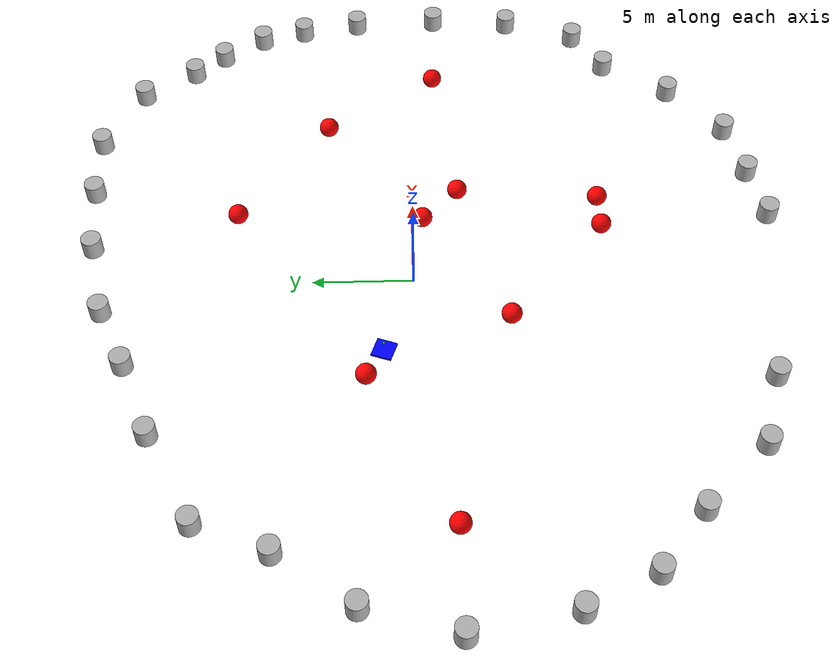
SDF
<sdf version='1.10'>
  <world name='3d_world'>
    <physics name='1ms' type='ode'>
      <max_step_size>0.001</max_step_size>
      <real_time_factor>1</real_time_factor>
      <real_time_update_rate>1000</real_time_update_rate>
    </physics>
    <gravity>0 0 0</gravity>
    <plugin name='gz::sim::v8::systems::Physics' filename='gz-sim-physics-system'/>
    <plugin name='ignition::gazebo::systems::UserCommands' filename='libignition-gazebo-user-commands-system.so'/>
    <plugin name='gz::sim::systems::SceneBroadcaster' filename='gz-sim-scene-broadcaster-system'/>
    <plugin name='gz::sim::systems::Sensors' filename='gz-sim-sensors-system'>
      <render_engine>ogre2</render_engine>
    </plugin>
    <magnetic_field>5.5644999999999998e-06 2.2875799999999999e-05 -4.2388400000000002e-05</magnetic_field>
    <atmosphere type='adiabatic'/>
    <scene>
      <ambient>0.400000006 0.400000006 0.400000006 1</ambient>
      <background>0.699999988 0.699999988 0.699999988 1</background>
      <shadows>true</shadows>
    </scene>
    <model name='agente' canonical_link='chassis'>
      <pose>-4.1412244840083385 1.4699329197364004 1.1905768561219049e-17 -8.9568819849753768e-19 -1.9798048087460244e-19 -1.9063171572255722</pose>
      <link name='chassis'>
        <pose>0 0 0 0 0 0</pose>
        <inertial>
          <mass>1.14395</mass>
          <inertia>
            <ixx>0.095328999999999997</ixx>
            <ixy>0</ixy>
            <ixz>0</ixz>
            <iyy>0.38131700000000002</iyy>
            <iyz>0</iyz>
            <izz>0.47664600000000001</izz>
          </inertia>
          <pose>0 0 0 0 0 0</pose>
        </inertial>
        <visual name='visual'>
          <geometry>
            <box>
              <size>1 1 0.10000000000000001</size>
            </box>
          </geometry>
          <material>
            <ambient>0 0 1 1</ambient>
            <diffuse>0 0 1 1</diffuse>
            <specular>0 0 1 1</specular>
          </material>
        </visual>
        <collision name='collision'>
          <geometry>
            <box>
              <size>1 1 1</size>
            </box>
          </geometry>
          <surface>
            <friction>
              <ode/>
            </friction>
            <bounce/>
            <contact/>
          </surface>
        </collision>
        <enable_wind>false</enable_wind>
        <enable_gravity>false</enable_gravity>
      </link>
      <link name='lidar_link'>
        <pose>0 -3.5527136788005009e-15 0.5 0 0 -3.3306690738754691e-16</pose>
        <inertial>
          <mass>0.10000000000000001</mass>
          <inertia>
            <ixx>0.00016666700000000001</ixx>
            <iyy>0.00016666700000000001</iyy>
            <izz>0.00016666700000000001</izz>
            <ixy>0</ixy>
            <ixz>0</ixz>
            <iyz>0</iyz>
          </inertia>
          <pose>0 0 0 0 0 0</pose>
        </inertial>
        <collision name='collision'>
          <geometry>
            <cylinder>
              <radius>0.050000000000000003</radius>
              <length>0.10000000000000001</length>
            </cylinder>
          </geometry>
          <surface>
            <friction>
              <ode/>
            </friction>
            <bounce/>
            <contact/>
          </surface>
        </collision>
        <visual name='visual'>
          <geometry>
            <cylinder>
              <radius>0.050000000000000003</radius>
              <length>0.10000000000000001</length>
            </cylinder>
          </geometry>
          <material>
            <ambient>0 1 0 1</ambient>
            <diffuse>0 1 0 1</diffuse>
            <specular>0 1 0 1</specular>
          </material>
        </visual>
        <sensor name='lidar' type='gpu_lidar'>
          <pose>0 0 0 0 1.670477943807623e-52 0</pose>
          <topic>scan</topic>
          <update_rate>10</update_rate>
          <enable_metrics>false</enable_metrics>
          <lidar>
            <scan>
              <horizontal>
                <samples>5000</samples>
                <resolution>1</resolution>
                <min_angle>-3.1415899999999999</min_angle>
                <max_angle>3.1415899999999999</max_angle>
              </horizontal>
              <vertical>
                <samples>1</samples>
                <min_angle>0</min_angle>
                <max_angle>0</max_angle>
                <resolution>1</resolution>
              </vertical>
            </scan>
            <range>
              <min>0.10000000000000001</min>
              <max>10</max>
              <resolution>0.01</resolution>
            </range>
            <noise>
              <type>none</type>
              <mean>0</mean>
              <stddev>0</stddev>
            </noise>
            <visibility_mask>4294967295</visibility_mask>
          </lidar>
        </sensor>
        <enable_wind>false</enable_wind>
        <enable_gravity>false</enable_gravity>
      </link>
      <joint name='lidar_joint' type='fixed'>
        <parent>chassis</parent>
        <child>lidar_link</child>
        <pose>0 0 0 0 1.670477943807623e-52 0</pose>
      </joint>
      <plugin name='ignition::gazebo::systems::JointStatePublisher' filename='ignition-gazebo-joint-state-publisher-system'/>
      <plugin name='ignition::gazebo::systems::OdometryPublisher' filename='ignition-gazebo-odometry-publisher-system'>
        <dimensions>3</dimensions>
      </plugin>
      <plugin name='ignition::gazebo::systems::VelocityControl' filename='ignition-gazebo-velocity-control-system'>
        <initial_linear>0.0 0 0</initial_linear>
        <initial_angular>0 0 0.0</initial_angular>
      </plugin>
      <plugin name='ignition::gazebo::systems::PosePublisher' filename='libignition-gazebo-pose-publisher-system.so'>
        <topic>/agente/pose</topic>
        <frame_id>agente</frame_id>
        <update_rate>30</update_rate>
      </plugin>
      <static>false</static>
      <self_collide>false</self_collide>
    </model>
    <model name='obstacle_1' canonical_link='obstacle'>
      <static>true</static>
      <pose>3.2000000476837158 -9.5197582244873047 0.5 0 0 0</pose>
      <link name='obstacle'>
        <pose>0 0 0 0 0 0</pose>
        <visual name='visual'>
          <geometry>
            <sphere>
              <radius>0.5</radius>
            </sphere>
          </geometry>
          <material>
            <ambient>1 0 0 1</ambient>
            <diffuse>1 0 0 1</diffuse>
            <specular>1 0 0 1</specular>
          </material>
        </visual>
        <collision name='collision'>
          <geometry>
            <sphere>
              <radius>0.5</radius>
            </sphere>
          </geometry>
          <surface>
            <friction>
              <ode/>
            </friction>
            <bounce/>
            <contact/>
          </surface>
        </collision>
        <inertial>
          <pose>0 0 0 0 0 0</pose>
          <mass>1</mass>
          <inertia>
            <ixx>1</ixx>
            <ixy>0</ixy>
            <ixz>0</ixz>
            <iyy>1</iyy>
            <iyz>0</iyz>
            <izz>1</izz>
          </inertia>
        </inertial>
        <enable_wind>false</enable_wind>
        <enable_gravity>false</enable_gravity>
      </link>
      <plugin name='ignition::gazebo::systems::VelocityControl' filename='ignition-gazebo-velocity-control-system'>
        <initial_linear>0.0 0 0</initial_linear>
        <initial_angular>0 0 0.0</initial_angular>
      </plugin>
      <plugin name='ignition::gazebo::systems::OdometryPublisher' filename='ignition-gazebo-odometry-publisher-system'>
        <dimensions>3</dimensions>
      </plugin>
      <self_collide>false</self_collide>
    </model>
    <model name='obstacle_2' canonical_link='obstacle'>
      <static>true</static>
      <pose>-13.715825080871582 -1.7999999523162842 0.5 0 0 0</pose>
      <link name='obstacle'>
        <pose>0 0 0 0 0 0</pose>
        <visual name='visual'>
          <geometry>
            <sphere>
              <radius>0.5</radius>
            </sphere>
          </geometry>
          <material>
            <ambient>1 0 0 1</ambient>
            <diffuse>1 0 0 1</diffuse>
            <specular>1 0 0 1</specular>
          </material>
        </visual>
        <collision name='collision'>
          <geometry>
            <sphere>
              <radius>0.5</radius>
            </sphere>
          </geometry>
          <surface>
            <friction>
              <ode/>
            </friction>
            <bounce/>
            <contact/>
          </surface>
        </collision>
        <inertial>
          <pose>0 0 0 0 0 0</pose>
          <mass>1</mass>
          <inertia>
            <ixx>1</ixx>
            <ixy>0</ixy>
            <ixz>0</ixz>
            <iyy>1</iyy>
            <iyz>0</iyz>
            <izz>1</izz>
          </inertia>
        </inertial>
        <enable_wind>false</enable_wind>
        <enable_gravity>false</enable_gravity>
      </link>
      <plugin name='ignition::gazebo::systems::VelocityControl' filename='ignition-gazebo-velocity-control-system'>
        <initial_linear>0.0 0 0</initial_linear>
        <initial_angular>0 0 0.0</initial_angular>
      </plugin>
      <plugin name='ignition::gazebo::systems::OdometryPublisher' filename='ignition-gazebo-odometry-publisher-system'>
        <dimensions>3</dimensions>
      </plugin>
      <self_collide>false</self_collide>
    </model>
    <model name='obstacle_3' canonical_link='obstacle'>
      <static>true</static>
      <pose>5.7000000000000002 -2.2999999999999998 0.5 0 0 0</pose>
      <link name='obstacle'>
        <pose>0 0 0 0 0 0</pose>
        <visual name='visual'>
          <geometry>
            <sphere>
              <radius>0.5</radius>
            </sphere>
          </geometry>
          <material>
            <ambient>1 0 0 1</ambient>
            <diffuse>1 0 0 1</diffuse>
            <specular>1 0 0 1</specular>
          </material>
        </visual>
        <collision name='collision'>
          <geometry>
            <sphere>
              <radius>0.5</radius>
            </sphere>
          </geometry>
          <surface>
            <friction>
              <ode/>
            </friction>
            <bounce/>
            <contact/>
          </surface>
        </collision>
        <inertial>
          <pose>0 0 0 0 0 0</pose>
          <mass>1</mass>
          <inertia>
            <ixx>1</ixx>
            <ixy>0</ixy>
            <ixz>0</ixz>
            <iyy>1</iyy>
            <iyz>0</iyz>
            <izz>1</izz>
          </inertia>
        </inertial>
        <enable_wind>false</enable_wind>
        <enable_gravity>false</enable_gravity>
      </link>
      <plugin name='ignition::gazebo::systems::VelocityControl' filename='ignition-gazebo-velocity-control-system'>
        <initial_linear>0.0 0 0</initial_linear>
        <initial_angular>0 0 0.0</initial_angular>
      </plugin>
      <plugin name='ignition::gazebo::systems::OdometryPublisher' filename='ignition-gazebo-odometry-publisher-system'>
        <dimensions>3</dimensions>
      </plugin>
      <self_collide>false</self_collide>
    </model>
    <model name='obstacle_4' canonical_link='obstacle'>
      <static>true</static>
      <pose>14.214949607849121 -1.2000000476837158 0.5 0 0 0</pose>
      <link name='obstacle'>
        <pose>0 0 0 0 0 0</pose>
        <visual name='visual'>
          <geometry>
            <sphere>
              <radius>0.5</radius>
            </sphere>
          </geometry>
          <material>
            <ambient>1 0 0 1</ambient>
            <diffuse>1 0 0 1</diffuse>
            <specular>1 0 0 1</specular>
          </material>
        </visual>
        <collision name='collision'>
          <geometry>
            <sphere>
              <radius>0.5</radius>
            </sphere>
          </geometry>
          <surface>
            <friction>
              <ode/>
            </friction>
            <bounce/>
            <contact/>
          </surface>
        </collision>
        <inertial>
          <pose>0 0 0 0 0 0</pose>
          <mass>1</mass>
          <inertia>
            <ixx>1</ixx>
            <ixy>0</ixy>
            <ixz>0</ixz>
            <iyy>1</iyy>
            <iyz>0</iyz>
            <izz>1</izz>
          </inertia>
        </inertial>
        <enable_wind>false</enable_wind>
        <enable_gravity>false</enable_gravity>
      </link>
      <plugin name='ignition::gazebo::systems::VelocityControl' filename='ignition-gazebo-velocity-control-system'>
        <initial_linear>0.0 0 0</initial_linear>
        <initial_angular>0 0 0.0</initial_angular>
      </plugin>
      <plugin name='ignition::gazebo::systems::OdometryPublisher' filename='ignition-gazebo-odometry-publisher-system'>
        <dimensions>3</dimensions>
      </plugin>
      <self_collide>false</self_collide>
    </model>
    <model name='obstacle_5' canonical_link='obstacle'>
      <static>true</static>
      <pose>3.7999999523162842 -0.48525863885879517 0.5 0 0 0</pose>
      <link name='obstacle'>
        <pose>0 0 0 0 0 0</pose>
        <visual name='visual'>
          <geometry>
            <sphere>
              <radius>0.5</radius>
            </sphere>
          </geometry>
          <material>
            <ambient>1 0 0 1</ambient>
            <diffuse>1 0 0 1</diffuse>
            <specular>1 0 0 1</specular>
          </material>
        </visual>
        <collision name='collision'>
          <geometry>
            <sphere>
              <radius>0.5</radius>
            </sphere>
          </geometry>
          <surface>
            <friction>
              <ode/>
            </friction>
            <bounce/>
            <contact/>
          </surface>
        </collision>
        <inertial>
          <pose>0 0 0 0 0 0</pose>
          <mass>1</mass>
          <inertia>
            <ixx>1</ixx>
            <ixy>0</ixy>
            <ixz>0</ixz>
            <iyy>1</iyy>
            <iyz>0</iyz>
            <izz>1</izz>
          </inertia>
        </inertial>
        <enable_wind>false</enable_wind>
        <enable_gravity>false</enable_gravity>
      </link>
      <plugin name='ignition::gazebo::systems::VelocityControl' filename='ignition-gazebo-velocity-control-system'>
        <initial_linear>0.0 0 0</initial_linear>
        <initial_angular>0 0 0.0</initial_angular>
      </plugin>
      <plugin name='ignition::gazebo::systems::OdometryPublisher' filename='ignition-gazebo-odometry-publisher-system'>
        <dimensions>3</dimensions>
      </plugin>
      <self_collide>false</self_collide>
    </model>
    <model name='obstacle_6' canonical_link='obstacle'>
      <static>true</static>
      <pose>5.0999999046325684 -9.4869499206542969 0.5 0 0 0</pose>
      <link name='obstacle'>
        <pose>0 0 0 0 0 0</pose>
        <visual name='visual'>
          <geometry>
            <sphere>
              <radius>0.5</radius>
            </sphere>
          </geometry>
          <material>
            <ambient>1 0 0 1</ambient>
            <diffuse>1 0 0 1</diffuse>
            <specular>1 0 0 1</specular>
          </material>
        </visual>
        <collision name='collision'>
          <geometry>
            <sphere>
              <radius>0.5</radius>
            </sphere>
          </geometry>
          <surface>
            <friction>
              <ode/>
            </friction>
            <bounce/>
            <contact/>
          </surface>
        </collision>
        <inertial>
          <pose>0 0 0 0 0 0</pose>
          <mass>1</mass>
          <inertia>
            <ixx>1</ixx>
            <ixy>0</ixy>
            <ixz>0</ixz>
            <iyy>1</iyy>
            <iyz>0</iyz>
            <izz>1</izz>
          </inertia>
        </inertial>
        <enable_wind>false</enable_wind>
        <enable_gravity>false</enable_gravity>
      </link>
      <plugin name='ignition::gazebo::systems::VelocityControl' filename='ignition-gazebo-velocity-control-system'>
        <initial_linear>0.0 0 0</initial_linear>
        <initial_angular>0 0 0.0</initial_angular>
      </plugin>
      <plugin name='ignition::gazebo::systems::OdometryPublisher' filename='ignition-gazebo-odometry-publisher-system'>
        <dimensions>3</dimensions>
      </plugin>
      <self_collide>false</self_collide>
    </model>
    <model name='obstacle_7' canonical_link='obstacle'>
      <static>true</static>
      <pose>-2.4704799652099609 -4.6619949340820312 0.5 0 0 0</pose>
      <link name='obstacle'>
        <pose>0 0 0 0 0 0</pose>
        <visual name='visual'>
          <geometry>
            <sphere>
              <radius>0.5</radius>
            </sphere>
          </geometry>
          <material>
            <ambient>1 0 0 1</ambient>
            <diffuse>1 0 0 1</diffuse>
            <specular>1 0 0 1</specular>
          </material>
        </visual>
        <collision name='collision'>
          <geometry>
            <sphere>
              <radius>0.5</radius>
            </sphere>
          </geometry>
          <surface>
            <friction>
              <ode/>
            </friction>
            <bounce/>
            <contact/>
          </surface>
        </collision>
        <inertial>
          <pose>0 0 0 0 0 0</pose>
          <mass>1</mass>
          <inertia>
            <ixx>1</ixx>
            <ixy>0</ixy>
            <ixz>0</ixz>
            <iyy>1</iyy>
            <iyz>0</iyz>
            <izz>1</izz>
          </inertia>
        </inertial>
        <enable_wind>false</enable_wind>
        <enable_gravity>false</enable_gravity>
      </link>
      <plugin name='ignition::gazebo::systems::VelocityControl' filename='ignition-gazebo-velocity-control-system'>
        <initial_linear>0.0 0 0</initial_linear>
        <initial_angular>0 0 0.0</initial_angular>
      </plugin>
      <plugin name='ignition::gazebo::systems::OdometryPublisher' filename='ignition-gazebo-odometry-publisher-system'>
        <dimensions>3</dimensions>
      </plugin>
      <self_collide>false</self_collide>
    </model>
    <model name='obstacle_8' canonical_link='obstacle'>
      <static>true</static>
      <pose>4.1999998092651367 8.8798303604125977 0.5 0 0 0</pose>
      <link name='obstacle'>
        <pose>0 0 0 0 0 0</pose>
        <visual name='visual'>
          <geometry>
            <sphere>
              <radius>0.5</radius>
            </sphere>
          </geometry>
          <material>
            <ambient>1 0 0 1</ambient>
            <diffuse>1 0 0 1</diffuse>
            <specular>1 0 0 1</specular>
          </material>
        </visual>
        <collision name='collision'>
          <geometry>
            <sphere>
              <radius>0.5</radius>
            </sphere>
          </geometry>
          <surface>
            <friction>
              <ode/>
            </friction>
            <bounce/>
            <contact/>
          </surface>
        </collision>
        <inertial>
          <pose>0 0 0 0 0 0</pose>
          <mass>1</mass>
          <inertia>
            <ixx>1</ixx>
            <ixy>0</ixy>
            <ixz>0</ixz>
            <iyy>1</iyy>
            <iyz>0</iyz>
            <izz>1</izz>
          </inertia>
        </inertial>
        <enable_wind>false</enable_wind>
        <enable_gravity>false</enable_gravity>
      </link>
      <plugin name='ignition::gazebo::systems::VelocityControl' filename='ignition-gazebo-velocity-control-system'>
        <initial_linear>0.0 0 0</initial_linear>
        <initial_angular>0 0 0.0</initial_angular>
      </plugin>
      <plugin name='ignition::gazebo::systems::OdometryPublisher' filename='ignition-gazebo-odometry-publisher-system'>
        <dimensions>3</dimensions>
      </plugin>
      <self_collide>false</self_collide>
    </model>
    <model name='obstacle_9' canonical_link='obstacle'>
      <static>true</static>
      <pose>-5.8806281089782715 2.2999999523162842 0.5 0 0 0</pose>
      <link name='obstacle'>
        <pose>0 0 0 0 0 0</pose>
        <visual name='visual'>
          <geometry>
            <sphere>
              <radius>0.5</radius>
            </sphere>
          </geometry>
          <material>
            <ambient>1 0 0 1</ambient>
            <diffuse>1 0 0 1</diffuse>
            <specular>1 0 0 1</specular>
          </material>
        </visual>
        <collision name='collision'>
          <geometry>
            <sphere>
              <radius>0.5</radius>
            </sphere>
          </geometry>
          <surface>
            <friction>
              <ode/>
            </friction>
            <bounce/>
            <contact/>
          </surface>
        </collision>
        <inertial>
          <pose>0 0 0 0 0 0</pose>
          <mass>1</mass>
          <inertia>
            <ixx>1</ixx>
            <ixy>0</ixy>
            <ixz>0</ixz>
            <iyy>1</iyy>
            <iyz>0</iyz>
            <izz>1</izz>
          </inertia>
        </inertial>
        <enable_wind>false</enable_wind>
        <enable_gravity>false</enable_gravity>
      </link>
      <plugin name='ignition::gazebo::systems::VelocityControl' filename='ignition-gazebo-velocity-control-system'>
        <initial_linear>0.0 0 0</initial_linear>
        <initial_angular>0 0 0.0</initial_angular>
      </plugin>
      <plugin name='ignition::gazebo::systems::OdometryPublisher' filename='ignition-gazebo-odometry-publisher-system'>
        <dimensions>3</dimensions>
      </plugin>
      <self_collide>false</self_collide>
    </model>
    <model name='obstacle_10' canonical_link='obstacle'>
      <static>true</static>
      <pose>10.422599792480469 4.4203739166259766 0.5 0 0 0</pose>
      <link name='obstacle'>
        <pose>0 0 0 0 0 0</pose>
        <visual name='visual'>
          <geometry>
            <sphere>
              <radius>0.5</radius>
            </sphere>
          </geometry>
          <material>
            <ambient>1 0 0 1</ambient>
            <diffuse>1 0 0 1</diffuse>
            <specular>1 0 0 1</specular>
          </material>
        </visual>
        <collision name='collision'>
          <geometry>
            <sphere>
              <radius>0.5</radius>
            </sphere>
          </geometry>
          <surface>
            <friction>
              <ode/>
            </friction>
            <bounce/>
            <contact/>
          </surface>
        </collision>
        <inertial>
          <pose>0 0 0 0 0 0</pose>
          <mass>1</mass>
          <inertia>
            <ixx>1</ixx>
            <ixy>0</ixy>
            <ixz>0</ixz>
            <iyy>1</iyy>
            <iyz>0</iyz>
            <izz>1</izz>
          </inertia>
        </inertial>
        <enable_wind>false</enable_wind>
        <enable_gravity>false</enable_gravity>
      </link>
      <plugin name='ignition::gazebo::systems::VelocityControl' filename='ignition-gazebo-velocity-control-system'>
        <initial_linear>0.0 0 0</initial_linear>
        <initial_angular>0 0 0.0</initial_angular>
      </plugin>
      <plugin name='ignition::gazebo::systems::OdometryPublisher' filename='ignition-gazebo-odometry-publisher-system'>
        <dimensions>3</dimensions>
      </plugin>
      <self_collide>false</self_collide>
    </model>
    <model name='cylinder'>
      <pose>15.269417392160539 -10.816985160655216 0.5 0 0 0</pose>
      <link name='cylinder_link'>
        <inertial>
          <inertia>
            <ixx>0.14580000000000001</ixx>
            <ixy>0</ixy>
            <ixz>0</ixz>
            <iyy>0.14580000000000001</iyy>
            <iyz>0</iyz>
            <izz>0.125</izz>
          </inertia>
          <mass>1</mass>
          <pose>0 0 0 0 0 0</pose>
        </inertial>
        <collision name='cylinder_collision'>
          <geometry>
            <cylinder>
              <radius>0.5</radius>
              <length>1</length>
            </cylinder>
          </geometry>
          <surface>
            <friction>
              <ode/>
            </friction>
            <bounce/>
            <contact/>
          </surface>
        </collision>
        <visual name='cylinder_visual'>
          <geometry>
            <cylinder>
              <radius>0.5</radius>
              <length>1</length>
            </cylinder>
          </geometry>
          <material>
            <ambient>0.300000012 0.300000012 0.300000012 1</ambient>
            <diffuse>0.699999988 0.699999988 0.699999988 1</diffuse>
            <specular>1 1 1 1</specular>
          </material>
        </visual>
        <pose>0 0 0 0 0 0</pose>
        <enable_wind>false</enable_wind>
      </link>
      <static>false</static>
      <self_collide>false</self_collide>
    </model>
    <model name='cylinder_0'>
      <pose>15.094748918446799 12.006712656296155 0.5 0 0 0</pose>
      <link name='cylinder_link'>
        <inertial>
          <inertia>
            <ixx>0.14580000000000001</ixx>
            <ixy>0</ixy>
            <ixz>0</ixz>
            <iyy>0.14580000000000001</iyy>
            <iyz>0</iyz>
            <izz>0.125</izz>
          </inertia>
          <mass>1</mass>
          <pose>0 0 0 0 0 0</pose>
        </inertial>
        <collision name='cylinder_collision'>
          <geometry>
            <cylinder>
              <radius>0.5</radius>
              <length>1</length>
            </cylinder>
          </geometry>
          <surface>
            <friction>
              <ode/>
            </friction>
            <bounce/>
            <contact/>
          </surface>
        </collision>
        <visual name='cylinder_visual'>
          <geometry>
            <cylinder>
              <radius>0.5</radius>
              <length>1</length>
            </cylinder>
          </geometry>
          <material>
            <ambient>0.300000012 0.300000012 0.300000012 1</ambient>
            <diffuse>0.699999988 0.699999988 0.699999988 1</diffuse>
            <specular>1 1 1 1</specular>
          </material>
        </visual>
        <pose>0 0 0 0 0 0</pose>
        <enable_wind>false</enable_wind>
      </link>
      <static>false</static>
      <self_collide>false</self_collide>
    </model>
    <model name='cylinder_1'>
      <pose>16.436124972366059 10.477371571319022 0.5 0 0 0</pose>
      <link name='cylinder_link'>
        <inertial>
          <inertia>
            <ixx>0.14580000000000001</ixx>
            <ixy>0</ixy>
            <ixz>0</ixz>
            <iyy>0.14580000000000001</iyy>
            <iyz>0</iyz>
            <izz>0.125</izz>
          </inertia>
          <mass>1</mass>
          <pose>0 0 0 0 0 0</pose>
        </inertial>
        <collision name='cylinder_collision'>
          <geometry>
            <cylinder>
              <radius>0.5</radius>
              <length>1</length>
            </cylinder>
          </geometry>
          <surface>
            <friction>
              <ode/>
            </friction>
            <bounce/>
            <contact/>
          </surface>
        </collision>
        <visual name='cylinder_visual'>
          <geometry>
            <cylinder>
              <radius>0.5</radius>
              <length>1</length>
            </cylinder>
          </geometry>
          <material>
            <ambient>0.300000012 0.300000012 0.300000012 1</ambient>
            <diffuse>0.699999988 0.699999988 0.699999988 1</diffuse>
            <specular>1 1 1 1</specular>
          </material>
        </visual>
        <pose>0 0 0 0 0 0</pose>
        <enable_wind>false</enable_wind>
      </link>
      <static>false</static>
      <self_collide>false</self_collide>
    </model>
    <model name='cylinder_2'>
      <pose>17.848211337584829 8.3622741821524453 0.5 0 0 0</pose>
      <link name='cylinder_link'>
        <inertial>
          <inertia>
            <ixx>0.14580000000000001</ixx>
            <ixy>0</ixy>
            <ixz>0</ixz>
            <iyy>0.14580000000000001</iyy>
            <iyz>0</iyz>
            <izz>0.125</izz>
          </inertia>
          <mass>1</mass>
          <pose>0 0 0 0 0 0</pose>
        </inertial>
        <collision name='cylinder_collision'>
          <geometry>
            <cylinder>
              <radius>0.5</radius>
              <length>1</length>
            </cylinder>
          </geometry>
          <surface>
            <friction>
              <ode/>
            </friction>
            <bounce/>
            <contact/>
          </surface>
        </collision>
        <visual name='cylinder_visual'>
          <geometry>
            <cylinder>
              <radius>0.5</radius>
              <length>1</length>
            </cylinder>
          </geometry>
          <material>
            <ambient>0.300000012 0.300000012 0.300000012 1</ambient>
            <diffuse>0.699999988 0.699999988 0.699999988 1</diffuse>
            <specular>1 1 1 1</specular>
          </material>
        </visual>
        <pose>0 0 0 0 0 0</pose>
        <enable_wind>false</enable_wind>
      </link>
      <static>false</static>
      <self_collide>false</self_collide>
    </model>
    <model name='cylinder_3'>
      <pose>13.352737232500933 14.611833586625353 0.5 0 0 0</pose>
      <link name='cylinder_link'>
        <inertial>
          <inertia>
            <ixx>0.14580000000000001</ixx>
            <ixy>0</ixy>
            <ixz>0</ixz>
            <iyy>0.14580000000000001</iyy>
            <iyz>0</iyz>
            <izz>0.125</izz>
          </inertia>
          <mass>1</mass>
          <pose>0 0 0 0 0 0</pose>
        </inertial>
        <collision name='cylinder_collision'>
          <geometry>
            <cylinder>
              <radius>0.5</radius>
              <length>1</length>
            </cylinder>
          </geometry>
          <surface>
            <friction>
              <ode/>
            </friction>
            <bounce/>
            <contact/>
          </surface>
        </collision>
        <visual name='cylinder_visual'>
          <geometry>
            <cylinder>
              <radius>0.5</radius>
              <length>1</length>
            </cylinder>
          </geometry>
          <material>
            <ambient>0.300000012 0.300000012 0.300000012 1</ambient>
            <diffuse>0.699999988 0.699999988 0.699999988 1</diffuse>
            <specular>1 1 1 1</specular>
          </material>
        </visual>
        <pose>0 0 0 0 0 0</pose>
        <enable_wind>false</enable_wind>
      </link>
      <static>false</static>
      <self_collide>false</self_collide>
    </model>
    <model name='cylinder_4'>
      <pose>9.5979299940273961 16.448883697315161 0.5 0 0 0</pose>
      <link name='cylinder_link'>
        <inertial>
          <inertia>
            <ixx>0.14580000000000001</ixx>
            <ixy>0</ixy>
            <ixz>0</ixz>
            <iyy>0.14580000000000001</iyy>
            <iyz>0</iyz>
            <izz>0.125</izz>
          </inertia>
          <mass>1</mass>
          <pose>0 0 0 0 0 0</pose>
        </inertial>
        <collision name='cylinder_collision'>
          <geometry>
            <cylinder>
              <radius>0.5</radius>
              <length>1</length>
            </cylinder>
          </geometry>
          <surface>
            <friction>
              <ode/>
            </friction>
            <bounce/>
            <contact/>
          </surface>
        </collision>
        <visual name='cylinder_visual'>
          <geometry>
            <cylinder>
              <radius>0.5</radius>
              <length>1</length>
            </cylinder>
          </geometry>
          <material>
            <ambient>0.300000012 0.300000012 0.300000012 1</ambient>
            <diffuse>0.699999988 0.699999988 0.699999988 1</diffuse>
            <specular>1 1 1 1</specular>
          </material>
        </visual>
        <pose>0 0 0 0 0 0</pose>
        <enable_wind>false</enable_wind>
      </link>
      <static>false</static>
      <self_collide>false</self_collide>
    </model>
    <model name='cylinder_5'>
      <pose>6.0515140881549669 16.388814048917581 0.5 0 0 0</pose>
      <link name='cylinder_link'>
        <inertial>
          <inertia>
            <ixx>0.14580000000000001</ixx>
            <ixy>0</ixy>
            <ixz>0</ixz>
            <iyy>0.14580000000000001</iyy>
            <iyz>0</iyz>
            <izz>0.125</izz>
          </inertia>
          <mass>1</mass>
          <pose>0 0 0 0 0 0</pose>
        </inertial>
        <collision name='cylinder_collision'>
          <geometry>
            <cylinder>
              <radius>0.5</radius>
              <length>1</length>
            </cylinder>
          </geometry>
          <surface>
            <friction>
              <ode/>
            </friction>
            <bounce/>
            <contact/>
          </surface>
        </collision>
        <visual name='cylinder_visual'>
          <geometry>
            <cylinder>
              <radius>0.5</radius>
              <length>1</length>
            </cylinder>
          </geometry>
          <material>
            <ambient>0.300000012 0.300000012 0.300000012 1</ambient>
            <diffuse>0.699999988 0.699999988 0.699999988 1</diffuse>
            <specular>1 1 1 1</specular>
          </material>
        </visual>
        <pose>0 0 0 0 0 0</pose>
        <enable_wind>false</enable_wind>
      </link>
      <static>false</static>
      <self_collide>false</self_collide>
    </model>
    <model name='cylinder_6'>
      <pose>2.2899129388506987 16.0340425713845 0.5 0 0 0</pose>
      <link name='cylinder_link'>
        <inertial>
          <inertia>
            <ixx>0.14580000000000001</ixx>
            <ixy>0</ixy>
            <ixz>0</ixz>
            <iyy>0.14580000000000001</iyy>
            <iyz>0</iyz>
            <izz>0.125</izz>
          </inertia>
          <mass>1</mass>
          <pose>0 0 0 0 0 0</pose>
        </inertial>
        <collision name='cylinder_collision'>
          <geometry>
            <cylinder>
              <radius>0.5</radius>
              <length>1</length>
            </cylinder>
          </geometry>
          <surface>
            <friction>
              <ode/>
            </friction>
            <bounce/>
            <contact/>
          </surface>
        </collision>
        <visual name='cylinder_visual'>
          <geometry>
            <cylinder>
              <radius>0.5</radius>
              <length>1</length>
            </cylinder>
          </geometry>
          <material>
            <ambient>0.300000012 0.300000012 0.300000012 1</ambient>
            <diffuse>0.699999988 0.699999988 0.699999988 1</diffuse>
            <specular>1 1 1 1</specular>
          </material>
        </visual>
        <pose>0 0 0 0 0 0</pose>
        <enable_wind>false</enable_wind>
      </link>
      <static>false</static>
      <self_collide>false</self_collide>
    </model>
    <model name='cylinder_7'>
      <pose>-1.7745054550565076 15.137313650426707 0.5 0 0 0</pose>
      <link name='cylinder_link'>
        <inertial>
          <inertia>
            <ixx>0.14580000000000001</ixx>
            <ixy>0</ixy>
            <ixz>0</ixz>
            <iyy>0.14580000000000001</iyy>
            <iyz>0</iyz>
            <izz>0.125</izz>
          </inertia>
          <mass>1</mass>
          <pose>0 0 0 0 0 0</pose>
        </inertial>
        <collision name='cylinder_collision'>
          <geometry>
            <cylinder>
              <radius>0.5</radius>
              <length>1</length>
            </cylinder>
          </geometry>
          <surface>
            <friction>
              <ode/>
            </friction>
            <bounce/>
            <contact/>
          </surface>
        </collision>
        <visual name='cylinder_visual'>
          <geometry>
            <cylinder>
              <radius>0.5</radius>
              <length>1</length>
            </cylinder>
          </geometry>
          <material>
            <ambient>0.300000012 0.300000012 0.300000012 1</ambient>
            <diffuse>0.699999988 0.699999988 0.699999988 1</diffuse>
            <specular>1 1 1 1</specular>
          </material>
        </visual>
        <pose>0 0 0 0 0 0</pose>
        <enable_wind>false</enable_wind>
      </link>
      <static>false</static>
      <self_collide>false</self_collide>
    </model>
    <model name='cylinder_8'>
      <pose>-4.954854841127041 13.699440272304345 0.5 0 0 0</pose>
      <link name='cylinder_link'>
        <inertial>
          <inertia>
            <ixx>0.14580000000000001</ixx>
            <ixy>0</ixy>
            <ixz>0</ixz>
            <iyy>0.14580000000000001</iyy>
            <iyz>0</iyz>
            <izz>0.125</izz>
          </inertia>
          <mass>1</mass>
          <pose>0 0 0 0 0 0</pose>
        </inertial>
        <collision name='cylinder_collision'>
          <geometry>
            <cylinder>
              <radius>0.5</radius>
              <length>1</length>
            </cylinder>
          </geometry>
          <surface>
            <friction>
              <ode/>
            </friction>
            <bounce/>
            <contact/>
          </surface>
        </collision>
        <visual name='cylinder_visual'>
          <geometry>
            <cylinder>
              <radius>0.5</radius>
              <length>1</length>
            </cylinder>
          </geometry>
          <material>
            <ambient>0.300000012 0.300000012 0.300000012 1</ambient>
            <diffuse>0.699999988 0.699999988 0.699999988 1</diffuse>
            <specular>1 1 1 1</specular>
          </material>
        </visual>
        <pose>0 0 0 0 0 0</pose>
        <enable_wind>false</enable_wind>
      </link>
      <static>false</static>
      <self_collide>false</self_collide>
    </model>
    <model name='cylinder_9'>
      <pose>-8.8422669369829716 12.138879817931782 0.5 0 0 0</pose>
      <link name='cylinder_link'>
        <inertial>
          <inertia>
            <ixx>0.14580000000000001</ixx>
            <ixy>0</ixy>
            <ixz>0</ixz>
            <iyy>0.14580000000000001</iyy>
            <iyz>0</iyz>
            <izz>0.125</izz>
          </inertia>
          <mass>1</mass>
          <pose>0 0 0 0 0 0</pose>
        </inertial>
        <collision name='cylinder_collision'>
          <geometry>
            <cylinder>
              <radius>0.5</radius>
              <length>1</length>
            </cylinder>
          </geometry>
          <surface>
            <friction>
              <ode/>
            </friction>
            <bounce/>
            <contact/>
          </surface>
        </collision>
        <visual name='cylinder_visual'>
          <geometry>
            <cylinder>
              <radius>0.5</radius>
              <length>1</length>
            </cylinder>
          </geometry>
          <material>
            <ambient>0.300000012 0.300000012 0.300000012 1</ambient>
            <diffuse>0.699999988 0.699999988 0.699999988 1</diffuse>
            <specular>1 1 1 1</specular>
          </material>
        </visual>
        <pose>0 0 0 0 0 0</pose>
        <enable_wind>false</enable_wind>
      </link>
      <static>false</static>
      <self_collide>false</self_collide>
    </model>
    <model name='cylinder_10'>
      <pose>-13.397165649108224 9.7793866497626141 0.5 0 0 0</pose>
      <link name='cylinder_link'>
        <inertial>
          <inertia>
            <ixx>0.14580000000000001</ixx>
            <ixy>0</ixy>
            <ixz>0</ixz>
            <iyy>0.14580000000000001</iyy>
            <iyz>0</iyz>
            <izz>0.125</izz>
          </inertia>
          <mass>1</mass>
          <pose>0 0 0 0 0 0</pose>
        </inertial>
        <collision name='cylinder_collision'>
          <geometry>
            <cylinder>
              <radius>0.5</radius>
              <length>1</length>
            </cylinder>
          </geometry>
          <surface>
            <friction>
              <ode/>
            </friction>
            <bounce/>
            <contact/>
          </surface>
        </collision>
        <visual name='cylinder_visual'>
          <geometry>
            <cylinder>
              <radius>0.5</radius>
              <length>1</length>
            </cylinder>
          </geometry>
          <material>
            <ambient>0.300000012 0.300000012 0.300000012 1</ambient>
            <diffuse>0.699999988 0.699999988 0.699999988 1</diffuse>
            <specular>1 1 1 1</specular>
          </material>
        </visual>
        <pose>0 0 0 0 0 0</pose>
        <enable_wind>false</enable_wind>
      </link>
      <static>false</static>
      <self_collide>false</self_collide>
    </model>
    <model name='cylinder_11'>
      <pose>-14.834978246727495 6.2617210237697432 0.5 0 0 0</pose>
      <link name='cylinder_link'>
        <inertial>
          <inertia>
            <ixx>0.14580000000000001</ixx>
            <ixy>0</ixy>
            <ixz>0</ixz>
            <iyy>0.14580000000000001</iyy>
            <iyz>0</iyz>
            <izz>0.125</izz>
          </inertia>
          <mass>1</mass>
          <pose>0 0 0 0 0 0</pose>
        </inertial>
        <collision name='cylinder_collision'>
          <geometry>
            <cylinder>
              <radius>0.5</radius>
              <length>1</length>
            </cylinder>
          </geometry>
          <surface>
            <friction>
              <ode/>
            </friction>
            <bounce/>
            <contact/>
          </surface>
        </collision>
        <visual name='cylinder_visual'>
          <geometry>
            <cylinder>
              <radius>0.5</radius>
              <length>1</length>
            </cylinder>
          </geometry>
          <material>
            <ambient>0.300000012 0.300000012 0.300000012 1</ambient>
            <diffuse>0.699999988 0.699999988 0.699999988 1</diffuse>
            <specular>1 1 1 1</specular>
          </material>
        </visual>
        <pose>0 0 0 0 0 0</pose>
        <enable_wind>false</enable_wind>
      </link>
      <static>false</static>
      <self_collide>false</self_collide>
    </model>
    <model name='cylinder_12'>
      <pose>-17.398333109278322 2.5634239759768569 0.5 0 0 0</pose>
      <link name='cylinder_link'>
        <inertial>
          <inertia>
            <ixx>0.14580000000000001</ixx>
            <ixy>0</ixy>
            <ixz>0</ixz>
            <iyy>0.14580000000000001</iyy>
            <iyz>0</iyz>
            <izz>0.125</izz>
          </inertia>
          <mass>1</mass>
          <pose>0 0 0 0 0 0</pose>
        </inertial>
        <collision name='cylinder_collision'>
          <geometry>
            <cylinder>
              <radius>0.5</radius>
              <length>1</length>
            </cylinder>
          </geometry>
          <surface>
            <friction>
              <ode/>
            </friction>
            <bounce/>
            <contact/>
          </surface>
        </collision>
        <visual name='cylinder_visual'>
          <geometry>
            <cylinder>
              <radius>0.5</radius>
              <length>1</length>
            </cylinder>
          </geometry>
          <material>
            <ambient>0.300000012 0.300000012 0.300000012 1</ambient>
            <diffuse>0.699999988 0.699999988 0.699999988 1</diffuse>
            <specular>1 1 1 1</specular>
          </material>
        </visual>
        <pose>0 0 0 0 0 0</pose>
        <enable_wind>false</enable_wind>
      </link>
      <static>false</static>
      <self_collide>false</self_collide>
    </model>
    <model name='cylinder_13'>
      <pose>-18.677651647694578 -1.8440542613640529 0.5 0 0 0</pose>
      <link name='cylinder_link'>
        <inertial>
          <inertia>
            <ixx>0.14580000000000001</ixx>
            <ixy>0</ixy>
            <ixz>0</ixz>
            <iyy>0.14580000000000001</iyy>
            <iyz>0</iyz>
            <izz>0.125</izz>
          </inertia>
          <mass>1</mass>
          <pose>0 0 0 0 0 0</pose>
        </inertial>
        <collision name='cylinder_collision'>
          <geometry>
            <cylinder>
              <radius>0.5</radius>
              <length>1</length>
            </cylinder>
          </geometry>
          <surface>
            <friction>
              <ode/>
            </friction>
            <bounce/>
            <contact/>
          </surface>
        </collision>
        <visual name='cylinder_visual'>
          <geometry>
            <cylinder>
              <radius>0.5</radius>
              <length>1</length>
            </cylinder>
          </geometry>
          <material>
            <ambient>0.300000012 0.300000012 0.300000012 1</ambient>
            <diffuse>0.699999988 0.699999988 0.699999988 1</diffuse>
            <specular>1 1 1 1</specular>
          </material>
        </visual>
        <pose>0 0 0 0 0 0</pose>
        <enable_wind>false</enable_wind>
      </link>
      <static>false</static>
      <self_collide>false</self_collide>
    </model>
    <model name='cylinder_14'>
      <pose>-17.688806189469044 -6.7284434240289457 0.5 0 0 0</pose>
      <link name='cylinder_link'>
        <inertial>
          <inertia>
            <ixx>0.14580000000000001</ixx>
            <ixy>0</ixy>
            <ixz>0</ixz>
            <iyy>0.14580000000000001</iyy>
            <iyz>0</iyz>
            <izz>0.125</izz>
          </inertia>
          <mass>1</mass>
          <pose>0 0 0 0 0 0</pose>
        </inertial>
        <collision name='cylinder_collision'>
          <geometry>
            <cylinder>
              <radius>0.5</radius>
              <length>1</length>
            </cylinder>
          </geometry>
          <surface>
            <friction>
              <ode/>
            </friction>
            <bounce/>
            <contact/>
          </surface>
        </collision>
        <visual name='cylinder_visual'>
          <geometry>
            <cylinder>
              <radius>0.5</radius>
              <length>1</length>
            </cylinder>
          </geometry>
          <material>
            <ambient>0.300000012 0.300000012 0.300000012 1</ambient>
            <diffuse>0.699999988 0.699999988 0.699999988 1</diffuse>
            <specular>1 1 1 1</specular>
          </material>
        </visual>
        <pose>0 0 0 0 0 0</pose>
        <enable_wind>false</enable_wind>
      </link>
      <static>false</static>
      <self_collide>false</self_collide>
    </model>
    <model name='cylinder_15'>
      <pose>-16.033166817593823 -10.08551632620977 0.5 0 0 0</pose>
      <link name='cylinder_link'>
        <inertial>
          <inertia>
            <ixx>0.14580000000000001</ixx>
            <ixy>0</ixy>
            <ixz>0</ixz>
            <iyy>0.14580000000000001</iyy>
            <iyz>0</iyz>
            <izz>0.125</izz>
          </inertia>
          <mass>1</mass>
          <pose>0 0 0 0 0 0</pose>
        </inertial>
        <collision name='cylinder_collision'>
          <geometry>
            <cylinder>
              <radius>0.5</radius>
              <length>1</length>
            </cylinder>
          </geometry>
          <surface>
            <friction>
              <ode/>
            </friction>
            <bounce/>
            <contact/>
          </surface>
        </collision>
        <visual name='cylinder_visual'>
          <geometry>
            <cylinder>
              <radius>0.5</radius>
              <length>1</length>
            </cylinder>
          </geometry>
          <material>
            <ambient>0.300000012 0.300000012 0.300000012 1</ambient>
            <diffuse>0.699999988 0.699999988 0.699999988 1</diffuse>
            <specular>1 1 1 1</specular>
          </material>
        </visual>
        <pose>0 0 0 0 0 0</pose>
        <enable_wind>false</enable_wind>
      </link>
      <static>false</static>
      <self_collide>false</self_collide>
    </model>
    <model name='cylinder_16'>
      <pose>-13.10268881447373 -12.418082264403743 0.5 0 0 0</pose>
      <link name='cylinder_link'>
        <inertial>
          <inertia>
            <ixx>0.14580000000000001</ixx>
            <ixy>0</ixy>
            <ixz>0</ixz>
            <iyy>0.14580000000000001</iyy>
            <iyz>0</iyz>
            <izz>0.125</izz>
          </inertia>
          <mass>1</mass>
          <pose>0 0 0 0 0 0</pose>
        </inertial>
        <collision name='cylinder_collision'>
          <geometry>
            <cylinder>
              <radius>0.5</radius>
              <length>1</length>
            </cylinder>
          </geometry>
          <surface>
            <friction>
              <ode/>
            </friction>
            <bounce/>
            <contact/>
          </surface>
        </collision>
        <visual name='cylinder_visual'>
          <geometry>
            <cylinder>
              <radius>0.5</radius>
              <length>1</length>
            </cylinder>
          </geometry>
          <material>
            <ambient>0.300000012 0.300000012 0.300000012 1</ambient>
            <diffuse>0.699999988 0.699999988 0.699999988 1</diffuse>
            <specular>1 1 1 1</specular>
          </material>
        </visual>
        <pose>0 0 0 0 0 0</pose>
        <enable_wind>false</enable_wind>
      </link>
      <static>false</static>
      <self_collide>false</self_collide>
    </model>
    <model name='cylinder_17'>
      <pose>-9.8578014298491663 -15.680189383384157 0.5 0 0 0</pose>
      <link name='cylinder_link'>
        <inertial>
          <inertia>
            <ixx>0.14580000000000001</ixx>
            <ixy>0</ixy>
            <ixz>0</ixz>
            <iyy>0.14580000000000001</iyy>
            <iyz>0</iyz>
            <izz>0.125</izz>
          </inertia>
          <mass>1</mass>
          <pose>0 0 0 0 0 0</pose>
        </inertial>
        <collision name='cylinder_collision'>
          <geometry>
            <cylinder>
              <radius>0.5</radius>
              <length>1</length>
            </cylinder>
          </geometry>
          <surface>
            <friction>
              <ode/>
            </friction>
            <bounce/>
            <contact/>
          </surface>
        </collision>
        <visual name='cylinder_visual'>
          <geometry>
            <cylinder>
              <radius>0.5</radius>
              <length>1</length>
            </cylinder>
          </geometry>
          <material>
            <ambient>0.300000012 0.300000012 0.300000012 1</ambient>
            <diffuse>0.699999988 0.699999988 0.699999988 1</diffuse>
            <specular>1 1 1 1</specular>
          </material>
        </visual>
        <pose>0 0 0 0 0 0</pose>
        <enable_wind>false</enable_wind>
      </link>
      <static>false</static>
      <self_collide>false</self_collide>
    </model>
    <model name='cylinder_18'>
      <pose>-6.1537796873927189 -16.771895644770975 0.5 0 0 0</pose>
      <link name='cylinder_link'>
        <inertial>
          <inertia>
            <ixx>0.14580000000000001</ixx>
            <ixy>0</ixy>
            <ixz>0</ixz>
            <iyy>0.14580000000000001</iyy>
            <iyz>0</iyz>
            <izz>0.125</izz>
          </inertia>
          <mass>1</mass>
          <pose>0 0 0 0 0 0</pose>
        </inertial>
        <collision name='cylinder_collision'>
          <geometry>
            <cylinder>
              <radius>0.5</radius>
              <length>1</length>
            </cylinder>
          </geometry>
          <surface>
            <friction>
              <ode/>
            </friction>
            <bounce/>
            <contact/>
          </surface>
        </collision>
        <visual name='cylinder_visual'>
          <geometry>
            <cylinder>
              <radius>0.5</radius>
              <length>1</length>
            </cylinder>
          </geometry>
          <material>
            <ambient>0.300000012 0.300000012 0.300000012 1</ambient>
            <diffuse>0.699999988 0.699999988 0.699999988 1</diffuse>
            <specular>1 1 1 1</specular>
          </material>
        </visual>
        <pose>0 0 0 0 0 0</pose>
        <enable_wind>false</enable_wind>
      </link>
      <static>false</static>
      <self_collide>false</self_collide>
    </model>
    <model name='cylinder_2_1'>
      <pose>18.511514060292996 6.0588300437838649 0.5 0 0 0</pose>
      <link name='cylinder_link'>
        <inertial>
          <inertia>
            <ixx>0.14580000000000001</ixx>
            <ixy>0</ixy>
            <ixz>0</ixz>
            <iyy>0.14580000000000001</iyy>
            <iyz>0</iyz>
            <izz>0.125</izz>
          </inertia>
          <mass>1</mass>
          <pose>0 0 0 0 0 0</pose>
        </inertial>
        <collision name='cylinder_collision'>
          <geometry>
            <cylinder>
              <radius>0.5</radius>
              <length>1</length>
            </cylinder>
          </geometry>
          <surface>
            <friction>
              <ode/>
            </friction>
            <bounce/>
            <contact/>
          </surface>
        </collision>
        <visual name='cylinder_visual'>
          <geometry>
            <cylinder>
              <radius>0.5</radius>
              <length>1</length>
            </cylinder>
          </geometry>
          <material>
            <ambient>0.300000012 0.300000012 0.300000012 1</ambient>
            <diffuse>0.699999988 0.699999988 0.699999988 1</diffuse>
            <specular>1 1 1 1</specular>
          </material>
        </visual>
        <pose>0 0 0 0 0 0</pose>
        <enable_wind>false</enable_wind>
      </link>
      <static>false</static>
      <self_collide>false</self_collide>
    </model>
    <model name='cylinder_2_1_1'>
      <pose>19.076227308720537 3.0264476354256757 0.5 0 0 0</pose>
      <link name='cylinder_link'>
        <inertial>
          <inertia>
            <ixx>0.14580000000000001</ixx>
            <ixy>0</ixy>
            <ixz>0</ixz>
            <iyy>0.14580000000000001</iyy>
            <iyz>0</iyz>
            <izz>0.125</izz>
          </inertia>
          <mass>1</mass>
          <pose>0 0 0 0 0 0</pose>
        </inertial>
        <collision name='cylinder_collision'>
          <geometry>
            <cylinder>
              <radius>0.5</radius>
              <length>1</length>
            </cylinder>
          </geometry>
          <surface>
            <friction>
              <ode/>
            </friction>
            <bounce/>
            <contact/>
          </surface>
        </collision>
        <visual name='cylinder_visual'>
          <geometry>
            <cylinder>
              <radius>0.5</radius>
              <length>1</length>
            </cylinder>
          </geometry>
          <material>
            <ambient>0.300000012 0.300000012 0.300000012 1</ambient>
            <diffuse>0.699999988 0.699999988 0.699999988 1</diffuse>
            <specular>1 1 1 1</specular>
          </material>
        </visual>
        <pose>0 0 0 0 0 0</pose>
        <enable_wind>false</enable_wind>
      </link>
      <static>false</static>
      <self_collide>false</self_collide>
    </model>
    <model name='cylinder_2_1_1_1'>
      <pose>19.31212663741853 -1.3622082336673742 0.5 0 0 0</pose>
      <link name='cylinder_link'>
        <inertial>
          <inertia>
            <ixx>0.14580000000000001</ixx>
            <ixy>0</ixy>
            <ixz>0</ixz>
            <iyy>0.14580000000000001</iyy>
            <iyz>0</iyz>
            <izz>0.125</izz>
          </inertia>
          <mass>1</mass>
          <pose>0 0 0 0 0 0</pose>
        </inertial>
        <collision name='cylinder_collision'>
          <geometry>
            <cylinder>
              <radius>0.5</radius>
              <length>1</length>
            </cylinder>
          </geometry>
          <surface>
            <friction>
              <ode/>
            </friction>
            <bounce/>
            <contact/>
          </surface>
        </collision>
        <visual name='cylinder_visual'>
          <geometry>
            <cylinder>
              <radius>0.5</radius>
              <length>1</length>
            </cylinder>
          </geometry>
          <material>
            <ambient>0.300000012 0.300000012 0.300000012 1</ambient>
            <diffuse>0.699999988 0.699999988 0.699999988 1</diffuse>
            <specular>1 1 1 1</specular>
          </material>
        </visual>
        <pose>0 0 0 0 0 0</pose>
        <enable_wind>false</enable_wind>
      </link>
      <static>false</static>
      <self_collide>false</self_collide>
    </model>
    <model name='cylinder_2_1_1_1_1'>
      <pose>18.99589708305415 -5.5566708373008673 0.5 0 0 0</pose>
      <link name='cylinder_link'>
        <inertial>
          <inertia>
            <ixx>0.14580000000000001</ixx>
            <ixy>0</ixy>
            <ixz>0</ixz>
            <iyy>0.14580000000000001</iyy>
            <iyz>0</iyz>
            <izz>0.125</izz>
          </inertia>
          <mass>1</mass>
          <pose>0 0 0 0 0 0</pose>
        </inertial>
        <collision name='cylinder_collision'>
          <geometry>
            <cylinder>
              <radius>0.5</radius>
              <length>1</length>
            </cylinder>
          </geometry>
          <surface>
            <friction>
              <ode/>
            </friction>
            <bounce/>
            <contact/>
          </surface>
        </collision>
        <visual name='cylinder_visual'>
          <geometry>
            <cylinder>
              <radius>0.5</radius>
              <length>1</length>
            </cylinder>
          </geometry>
          <material>
            <ambient>0.300000012 0.300000012 0.300000012 1</ambient>
            <diffuse>0.699999988 0.699999988 0.699999988 1</diffuse>
            <specular>1 1 1 1</specular>
          </material>
        </visual>
        <pose>0 0 0 0 0 0</pose>
        <enable_wind>false</enable_wind>
      </link>
      <static>false</static>
      <self_collide>false</self_collide>
    </model>
    <model name='cylinder_2_1_1_1_2'>
      <pose>17.735656197172386 -9.2915929191800526 0.5 0 0 0</pose>
      <link name='cylinder_link'>
        <inertial>
          <inertia>
            <ixx>0.14580000000000001</ixx>
            <ixy>0</ixy>
            <ixz>0</ixz>
            <iyy>0.14580000000000001</iyy>
            <iyz>0</iyz>
            <izz>0.125</izz>
          </inertia>
          <mass>1</mass>
          <pose>0 0 0 0 0 0</pose>
        </inertial>
        <collision name='cylinder_collision'>
          <geometry>
            <cylinder>
              <radius>0.5</radius>
              <length>1</length>
            </cylinder>
          </geometry>
          <surface>
            <friction>
              <ode/>
            </friction>
            <bounce/>
            <contact/>
          </surface>
        </collision>
        <visual name='cylinder_visual'>
          <geometry>
            <cylinder>
              <radius>0.5</radius>
              <length>1</length>
            </cylinder>
          </geometry>
          <material>
            <ambient>0.300000012 0.300000012 0.300000012 1</ambient>
            <diffuse>0.699999988 0.699999988 0.699999988 1</diffuse>
            <specular>1 1 1 1</specular>
          </material>
        </visual>
        <pose>0 0 0 0 0 0</pose>
        <enable_wind>false</enable_wind>
      </link>
      <static>false</static>
      <self_collide>false</self_collide>
    </model>
    <model name='cylinder_2_1_1_1_2_1'>
      <pose>13.08288547092384 -14.158149204792238 0.5 0 0 0</pose>
      <link name='cylinder_link'>
        <inertial>
          <inertia>
            <ixx>0.14580000000000001</ixx>
            <ixy>0</ixy>
            <ixz>0</ixz>
            <iyy>0.14580000000000001</iyy>
            <iyz>0</iyz>
            <izz>0.125</izz>
          </inertia>
          <mass>1</mass>
          <pose>0 0 0 0 0 0</pose>
        </inertial>
        <collision name='cylinder_collision'>
          <geometry>
            <cylinder>
              <radius>0.5</radius>
              <length>1</length>
            </cylinder>
          </geometry>
          <surface>
            <friction>
              <ode/>
            </friction>
            <bounce/>
            <contact/>
          </surface>
        </collision>
        <visual name='cylinder_visual'>
          <geometry>
            <cylinder>
              <radius>0.5</radius>
              <length>1</length>
            </cylinder>
          </geometry>
          <material>
            <ambient>0.300000012 0.300000012 0.300000012 1</ambient>
            <diffuse>0.699999988 0.699999988 0.699999988 1</diffuse>
            <specular>1 1 1 1</specular>
          </material>
        </visual>
        <pose>0 0 0 0 0 0</pose>
        <enable_wind>false</enable_wind>
      </link>
      <static>false</static>
      <self_collide>false</self_collide>
    </model>
    <model name='cylinder_2_1_1_1_2_1_1'>
      <pose>10.023333707943209 -16.792549974980574 0.5 0 0 0</pose>
      <link name='cylinder_link'>
        <inertial>
          <inertia>
            <ixx>0.14580000000000001</ixx>
            <ixy>0</ixy>
            <ixz>0</ixz>
            <iyy>0.14580000000000001</iyy>
            <iyz>0</iyz>
            <izz>0.125</izz>
          </inertia>
          <mass>1</mass>
          <pose>0 0 0 0 0 0</pose>
        </inertial>
        <collision name='cylinder_collision'>
          <geometry>
            <cylinder>
              <radius>0.5</radius>
              <length>1</length>
            </cylinder>
          </geometry>
          <surface>
            <friction>
              <ode/>
            </friction>
            <bounce/>
            <contact/>
          </surface>
        </collision>
        <visual name='cylinder_visual'>
          <geometry>
            <cylinder>
              <radius>0.5</radius>
              <length>1</length>
            </cylinder>
          </geometry>
          <material>
            <ambient>0.300000012 0.300000012 0.300000012 1</ambient>
            <diffuse>0.699999988 0.699999988 0.699999988 1</diffuse>
            <specular>1 1 1 1</specular>
          </material>
        </visual>
        <pose>0 0 0 0 0 0</pose>
        <enable_wind>false</enable_wind>
      </link>
      <static>false</static>
      <self_collide>false</self_collide>
    </model>
    <model name='cylinder_2_1_1_1_2_1_1_1'>
      <pose>6.9117303885716135 -17.518436838531304 0.5 0 0 0</pose>
      <link name='cylinder_link'>
        <inertial>
          <inertia>
            <ixx>0.14580000000000001</ixx>
            <ixy>0</ixy>
            <ixz>0</ixz>
            <iyy>0.14580000000000001</iyy>
            <iyz>0</iyz>
            <izz>0.125</izz>
          </inertia>
          <mass>1</mass>
          <pose>0 0 0 0 0 0</pose>
        </inertial>
        <collision name='cylinder_collision'>
          <geometry>
            <cylinder>
              <radius>0.5</radius>
              <length>1</length>
            </cylinder>
          </geometry>
          <surface>
            <friction>
              <ode/>
            </friction>
            <bounce/>
            <contact/>
          </surface>
        </collision>
        <visual name='cylinder_visual'>
          <geometry>
            <cylinder>
              <radius>0.5</radius>
              <length>1</length>
            </cylinder>
          </geometry>
          <material>
            <ambient>0.300000012 0.300000012 0.300000012 1</ambient>
            <diffuse>0.699999988 0.699999988 0.699999988 1</diffuse>
            <specular>1 1 1 1</specular>
          </material>
        </visual>
        <pose>0 0 0 0 0 0</pose>
        <enable_wind>false</enable_wind>
      </link>
      <static>false</static>
      <self_collide>false</self_collide>
    </model>
    <model name='cylinder_2_1_1_1_2_1_1_1_1'>
      <pose>3.9316298581485229 -18.119987110034963 0.5 0 0 0</pose>
      <link name='cylinder_link'>
        <inertial>
          <inertia>
            <ixx>0.14580000000000001</ixx>
            <ixy>0</ixy>
            <ixz>0</ixz>
            <iyy>0.14580000000000001</iyy>
            <iyz>0</iyz>
            <izz>0.125</izz>
          </inertia>
          <mass>1</mass>
          <pose>0 0 0 0 0 0</pose>
        </inertial>
        <collision name='cylinder_collision'>
          <geometry>
            <cylinder>
              <radius>0.5</radius>
              <length>1</length>
            </cylinder>
          </geometry>
          <surface>
            <friction>
              <ode/>
            </friction>
            <bounce/>
            <contact/>
          </surface>
        </collision>
        <visual name='cylinder_visual'>
          <geometry>
            <cylinder>
              <radius>0.5</radius>
              <length>1</length>
            </cylinder>
          </geometry>
          <material>
            <ambient>0.300000012 0.300000012 0.300000012 1</ambient>
            <diffuse>0.699999988 0.699999988 0.699999988 1</diffuse>
            <specular>1 1 1 1</specular>
          </material>
        </visual>
        <pose>0 0 0 0 0 0</pose>
        <enable_wind>false</enable_wind>
      </link>
      <static>false</static>
      <self_collide>false</self_collide>
    </model>
    <light name='sun' type='directional'>
      <pose>0 0 10 0 0 0</pose>
      <cast_shadows>true</cast_shadows>
      <intensity>1</intensity>
      <direction>-0.5 0.10000000000000001 -0.90000000000000002</direction>
      <diffuse>0.800000012 0.800000012 0.800000012 1</diffuse>
      <specular>0.200000003 0.200000003 0.200000003 1</specular>
      <attenuation>
        <range>1000</range>
        <linear>0.01</linear>
        <constant>0.90000000000000002</constant>
        <quadratic>0.001</quadratic>
      </attenuation>
      <spot>
        <inner_angle>0</inner_angle>
        <outer_angle>0</outer_angle>
        <falloff>0</falloff>
      </spot>
    </light>
  </world>
</sdf>
